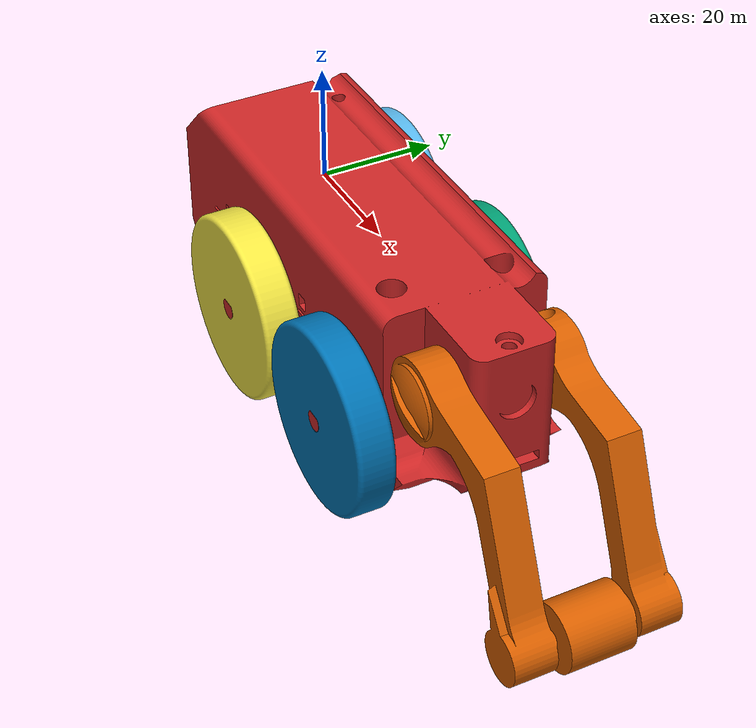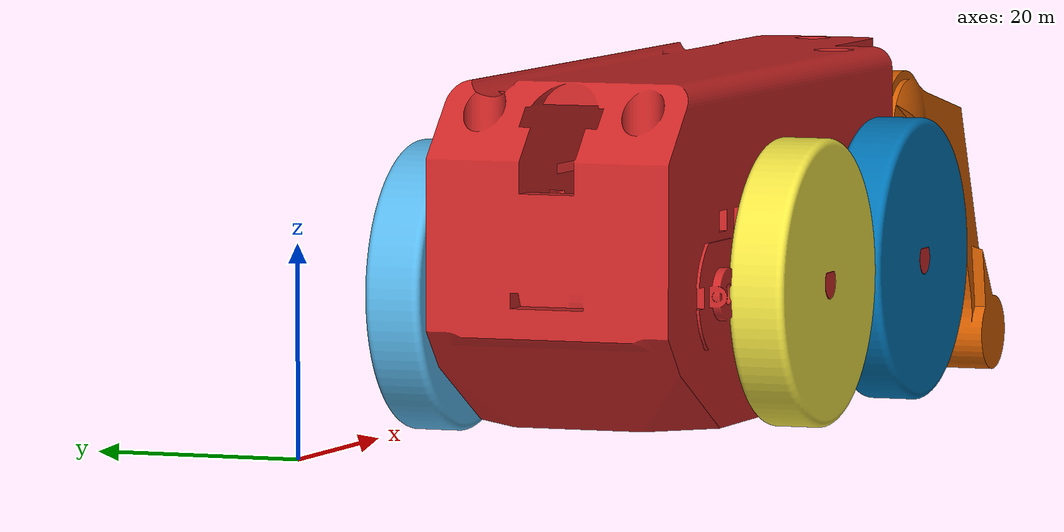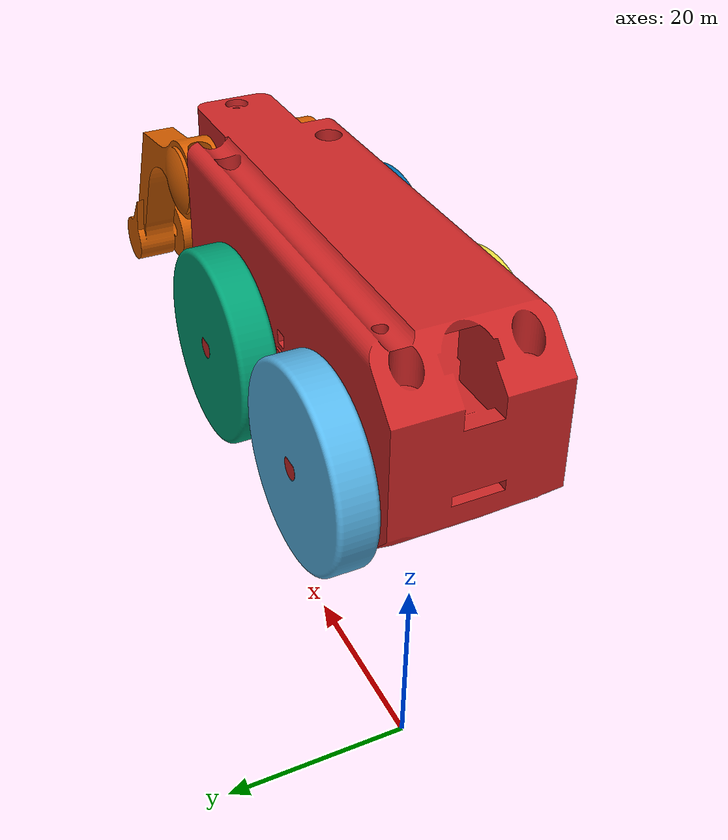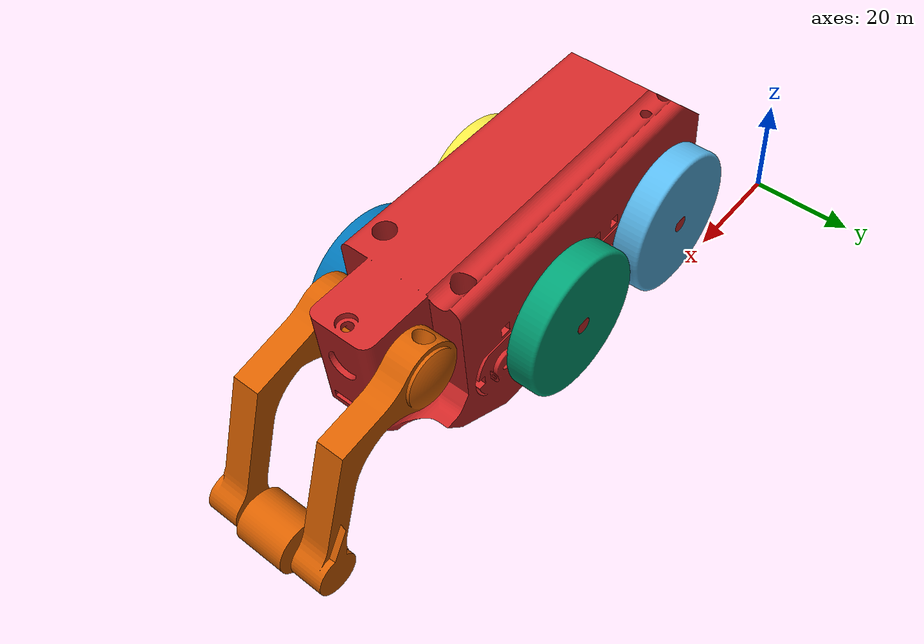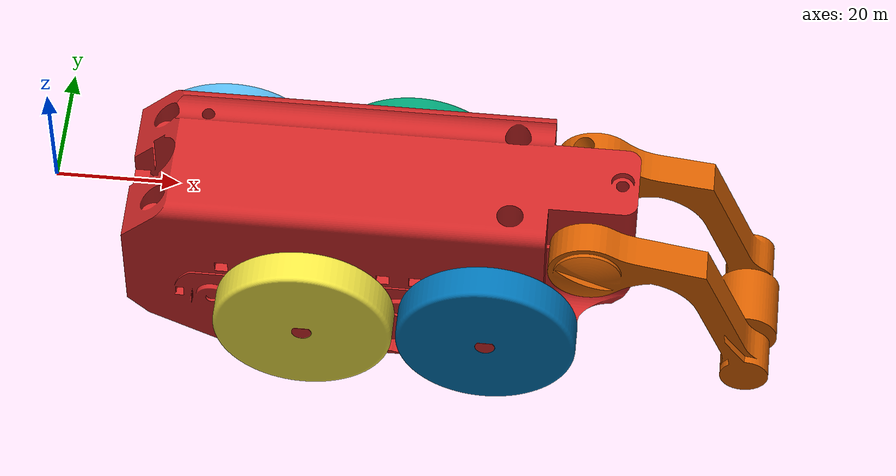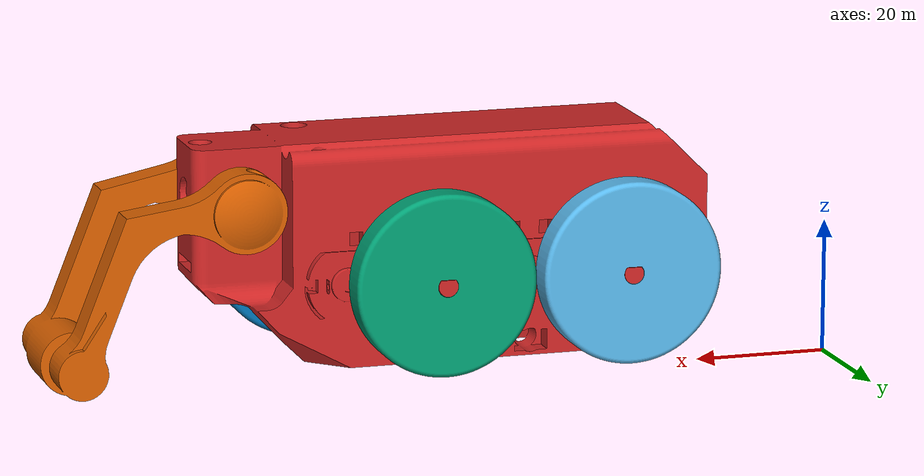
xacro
<?xml version="1.0"?>
<!-- Revolute-Revolute Manipulator -->
<robot name="rover_UT" xmlns:xacro="http://www.ros.org/wiki/xacro">

  <!-- Import Rviz colors -->
  <xacro:include filename="$(find rover_model)/urdf/materials.xacro" />

  <!-- Base Link -->
  <link name="base_link">
    <visual>
      <origin xyz="16.43 0 0" rpy="1.57 0 0"/>
      <geometry>
	      <mesh filename="package://rover_model/meshes/New_MiniRover_cutoff.dae"/>
      </geometry>
      <material name="red"/>
    </visual>
  </link>

  <link name="wheel1">
    <visual>
      <origin xyz="-13.75 3 -13.75" rpy="1.57 0 0"/>
      <geometry>
	      <mesh filename="package://rover_model/meshes/wheel_big.dae"/>
      </geometry>
    </visual>
  </link>

  <joint name="joint_base_mid1" type="revolute">
    <parent link="base_link"/>
    <child link="wheel1"/>
    <origin xyz="29.9 -3 13.75" rpy="0 1.57 0"/>
    <axis xyz="0 1 0"/>
    <dynamics damping="1"/>
    <limit effort="100.0" velocity="0.5" lower="-3.14" upper="3.14" />
  </joint>

  <link name="wheel2">
    <visual>
      <origin xyz="-13.75 3 -13.75" rpy="1.57 0 0"/>
      <geometry>
	      <mesh filename="package://rover_model/meshes/wheel_big.dae"/>
      </geometry>
    </visual>
  </link>

  <joint name="joint_base_mid2" type="revolute">
    <parent link="base_link"/>
    <child link="wheel2"/>
    <origin xyz="58.65 -3 13.75" rpy="0 01.57 0"/>
    <axis xyz="0 1 0"/>
    <dynamics damping="1"/>
    <limit effort="100.0" velocity="0.5" lower="-3.14" upper="3.14" />
  </joint>

<link name="wheel3">
    <visual>
      <origin xyz="-13.75 3 -13.75" rpy="1.57 0 0"/>
      <geometry>
	      <mesh filename="package://rover_model/meshes/wheel_big.dae"/>
      </geometry>
    </visual>
  </link>

  <joint name="joint_base_mid3" type="revolute">
    <parent link="base_link"/>
    <child link="wheel3"/>
    <origin xyz="44.3 -34 13.75" rpy="0 1.57 0"/>
    <axis xyz="0 1 0"/>
    <dynamics damping="1"/>
    <limit effort="100.0" velocity="0.5" lower="-3.14" upper="3.14" />
  </joint>

  <link name="wheel4">
    <visual>
      <origin xyz="-13.75 3 -13.75" rpy="1.57 0 0"/>
      <geometry>
	      <mesh filename="package://rover_model/meshes/wheel_big.dae"/>
      </geometry>
    </visual>
  </link>

  <joint name="joint_base_mid4" type="revolute">
    <parent link="base_link"/>
    <child link="wheel4"/>
    <origin xyz="72.35 -34 13.75" rpy="0 1.57 0"/>
    <axis xyz="0 1 0"/>
    <dynamics damping="1"/>
    <limit effort="100.0" velocity="0.5" lower="-3.14" upper="3.14" />
  </joint>

  <link name="arm">
    <visual>
      <origin xyz="36.8 -5 -14.8" rpy="1.57 0 -1.57"/>
      <geometry>
	      <mesh filename="package://rover_model/meshes/arm1.dae"/>
      </geometry>
    </visual>
  </link>

  <joint name="joint_base_mid5" type="revolute">
    <parent link="base_link"/>
    <child link="arm"/>
    <origin xyz="87 -0.5 25" rpy="0 0.42 0"/>
    <axis xyz="0 1 0"/>
    <dynamics damping="1"/>
    <limit effort="100.0" velocity="0.5" lower="-3.14" upper="3.14" />
  </joint>

</robot>
